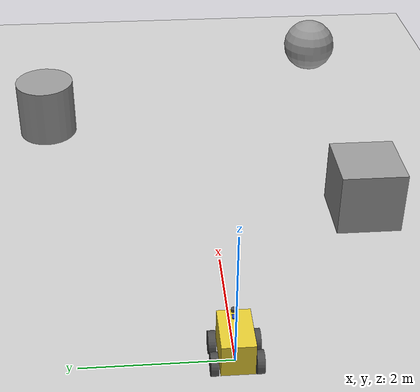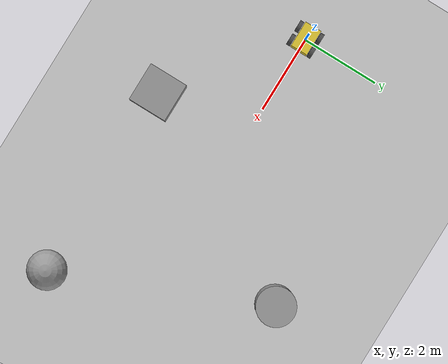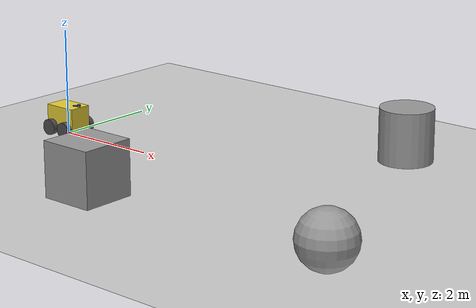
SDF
<sdf version="1.6">
 <world name="default">
  <light name="sun" type="directional">
   <pose>0 0 10 0 -0 0</pose>
   <diffuse>0.8 0.8 0.8 1</diffuse>
   <specular>0.2 0.2 0.2 1</specular>
   <attenuation>
    <range>1000</range>
    <constant>0.9</constant>
    <linear>0.01</linear>
    <quadratic>0.001</quadratic>
   </attenuation>
   <direction>-0.5 0.1 -0.9</direction>
  </light>
  <model name="ground_plane">
   <static>1</static>
   <link name="link">
    <collision name="collision">
     <geometry><plane><normal>0 0 1</normal><size>100 100</size></plane></geometry>
     <surface><friction><ode><mu>100</mu><mu2>50</mu2></ode></friction></surface>
    </collision>
    <visual name="visual">
     <cast_shadows>0</cast_shadows>
     <geometry><plane><normal>0 0 1</normal><size>100 100</size></plane></geometry>
     <material>
      <script><uri>file://media/materials/scripts/gazebo.material</uri><name>Gazebo/Grey</name></script>
     </material>
    </visual>
   </link>
  </model>
  <gravity>0 0 -9.8</gravity>
  <magnetic_field>6e-06 2.3e-05 -4.2e-05</magnetic_field>
  <atmosphere type="adiabatic"/>
  <physics name="default_physics" default="0" type="ode">
   <max_step_size>0.001</max_step_size>
   <real_time_factor>1</real_time_factor>
   <real_time_update_rate>1000</real_time_update_rate>
  </physics>
  <scene><ambient>0.4 0.4 0.4 1</ambient><background>0.7 0.7 0.7 1</background><shadows>1</shadows></scene>
  <spherical_coordinates>
   <surface_model>EARTH_WGS84</surface_model>
   <latitude_deg>0</latitude_deg>
   <longitude_deg>0</longitude_deg>
   <elevation>0</elevation>
   <heading_deg>0</heading_deg>
  </spherical_coordinates>
  <model name="unit_box">
   <pose>3.00249 -2.35073 0.499995 1e-05 -0 0</pose>
   <link name="link">
    <inertial>
     <mass>1</mass>
     <inertia>
      <ixx>0.166667</ixx>
      <ixy>0</ixy>
      <ixz>0</ixz>
      <iyy>0.166667</iyy>
      <iyz>0</iyz>
      <izz>0.166667</izz>
     </inertia>
    </inertial>
    <collision name="collision"><geometry><box><size>1 1 1</size></box></geometry></collision>
    <visual name="visual">
     <geometry><box><size>1 1 1</size></box></geometry>
     <material>
      <script><name>Gazebo/Grey</name><uri>file://media/materials/scripts/gazebo.material</uri></script>
     </material>
    </visual>
   </link>
  </model>
  <model name="unit_cylinder">
   <pose>5.88682 2.75848 0.499993 -3e-06 -3e-06 0</pose>
   <link name="link">
    <inertial>
     <mass>1</mass>
     <inertia><ixx>0.145833</ixx><ixy>0</ixy><ixz>0</ixz><iyy>0.145833</iyy><iyz>0</iyz><izz>0.125</izz></inertia>
    </inertial>
    <collision name="collision">
     <geometry><cylinder><radius>0.5</radius><length>1</length></cylinder></geometry>
    </collision>
    <visual name="visual">
     <geometry><cylinder><radius>0.5</radius><length>1</length></cylinder></geometry>
     <material>
      <script><name>Gazebo/Grey</name><uri>file://media/materials/scripts/gazebo.material</uri></script>
     </material>
    </visual>
   </link>
  </model>
  <model name="unit_sphere">
   <pose>8.05866 -2.39867 0.5 0 -0 0</pose>
   <link name="link">
    <inertial>
     <mass>1</mass>
     <inertia><ixx>0.1</ixx><ixy>0</ixy><ixz>0</ixz><iyy>0.1</iyy><iyz>0</iyz><izz>0.1</izz></inertia>
    </inertial>
    <collision name="collision"><geometry><sphere><radius>0.5</radius></sphere></geometry></collision>
    <visual name="visual">
     <geometry><sphere><radius>0.5</radius></sphere></geometry>
     <material>
      <script><name>Gazebo/Grey</name><uri>file://media/materials/scripts/gazebo.material</uri></script>
     </material>
    </visual>
   </link>
  </model>
  <model name="TargetBot">
   <link name="chasis">
    <inertial>
     <pose>5e-06 0 0.325005 0 -0 0</pose>
     <mass>1.00002</mass>
     <inertia>
      <ixx>0.05582</ixx>
      <ixy>0</ixy>
      <ixz>-1.28497e-06</ixz>
      <iyy>0.0535463</iyy>
      <iyz>0</iyz>
      <izz>0.034545</izz>
     </inertia>
    </inertial>
    <collision name="chasis_collision">
     <pose>0 0 0.325 0 -0 0</pose>
     <geometry><box><size>0.67 0.44 0.47</size></box></geometry>
    </collision>
    <collision name="chasis_fixed_joint_lump__imu_link_collision_1">
     <pose>0.2 0 0.57 0 -0 0</pose>
     <geometry><box><size>0.08 0.06 0.01</size></box></geometry>
    </collision>
    <collision name="chasis_fixed_joint_lump__rplidar_link_collision_2">
     <pose>0.3 0 0.59 0 -0 0</pose>
     <geometry><cylinder><length>0.04</length><radius>0.035</radius></cylinder></geometry>
    </collision>
    <visual name="chasis_visual">
     <pose>0 0 0.325 0 -0 0</pose>
     <geometry><box><size>0.67 0.44 0.47</size></box></geometry>
     <material>
      <script><name>Gazebo/ZincYellow</name><uri>file://media/materials/scripts/gazebo.material</uri></script>
     </material>
    </visual>
    <visual name="chasis_fixed_joint_lump__imu_link_visual_1">
     <pose>0.2 0 0.57 0 -0 0</pose>
     <geometry><box><size>0.08 0.06 0.01</size></box></geometry>
     <material>
      <script><name>Gazebo/Blue</name><uri>file://media/materials/scripts/gazebo.material</uri></script>
     </material>
    </visual>
    <visual name="chasis_fixed_joint_lump__rplidar_link_visual_2">
     <pose>0.3 0 0.59 0 -0 0</pose>
     <geometry><cylinder><length>0.04</length><radius>0.035</radius></cylinder></geometry>
     <material>
      <script><name>Gazebo/DarkGrey</name><uri>file://media/materials/scripts/gazebo.material</uri></script>
     </material>
    </visual>
    <sensor name="imu_sensor" type="imu">
     <always_on>1</always_on>
     <update_rate>100</update_rate>
     <visualize>1</visualize>
     <topic>__default_topic__</topic>
     <plugin name="imu_plugin" filename="libgazebo_ros_imu_sensor.so">
      <topicName>imu</topicName>
      <bodyName>imu_link</bodyName>
      <updateRateHZ>10.0</updateRateHZ>
      <gaussianNoise>0.0</gaussianNoise>
      <xyzOffset>0 0 0</xyzOffset>
      <rpyOffset>0 0 0</rpyOffset>
      <frameName>imu_link</frameName>
      <initialOrientationAsReference>false</initialOrientationAsReference>
      <robotNamespace>/</robotNamespace>
     </plugin>
     <pose>0.2 0 0.57 0 -0 0</pose>
    </sensor>
    <sensor name="head_hokuyo_sensor" type="ray">
     <visualize>1</visualize>
     <update_rate>40</update_rate>
     <ray>
      <scan>
       <horizontal>
        <samples>720</samples>
        <resolution>1</resolution>
        <min_angle>-3.14159</min_angle>
        <max_angle>3.14159</max_angle>
       </horizontal>
       <vertical><samples>1</samples><min_angle>0</min_angle><max_angle>0</max_angle></vertical>
      </scan>
      <range><min>0.1</min><max>30</max><resolution>0.01</resolution></range>
      <noise><type>gaussian</type><mean>0</mean><stddev>0.01</stddev></noise>
     </ray>
     <plugin name="gazebo_ros_head_hokuyo_controller" filename="libgazebo_ros_laser.so">
      <topicName>/laser/scan</topicName>
      <frameName>hokuyo_link</frameName>
      <robotNamespace>/</robotNamespace>
     </plugin>
     <pose>0.3 0 0.59 0 -0 0</pose>
    </sensor>
   </link>
   <link name="left_front_wheel">
    <pose>0.19 0.29 0.15 0 -0 0</pose>
    <inertial>
     <pose>0 0 0 1.5707 -0 0</pose>
     <mass>2</mass>
     <inertia>
      <ixx>0.0129167</ixx>
      <ixy>0</ixy>
      <ixz>0</ixz>
      <iyy>0.0129167</iyy>
      <iyz>0</iyz>
      <izz>0.00050625</izz>
     </inertia>
    </inertial>
    <collision name="left_front_wheel_collision">
     <pose>0 0 0 1.5707 -0 0</pose>
     <geometry><cylinder><length>0.1</length><radius>0.15</radius></cylinder></geometry>
    </collision>
    <visual name="left_front_wheel_visual">
     <pose>0 0 0 1.5707 -0 0</pose>
     <geometry><cylinder><length>0.1</length><radius>0.15</radius></cylinder></geometry>
     <material>
      <script><name>Gazebo/DarkGrey</name><uri>file://media/materials/scripts/gazebo.material</uri></script>
     </material>
    </visual>
   </link>
   <joint name="left_front_wheel_to_chasis" type="revolute">
    <child>left_front_wheel</child>
    <parent>chasis</parent>
    <axis>
     <xyz>0 1 0</xyz>
     <limit><lower>-1e+16</lower><upper>1e+16</upper></limit>
     <dynamics><spring_reference>0</spring_reference><spring_stiffness>0</spring_stiffness></dynamics>
     <use_parent_model_frame>1</use_parent_model_frame>
    </axis>
   </joint>
   <link name="left_rear_wheel">
    <pose>-0.19 0.29 0.15 0 -0 0</pose>
    <inertial>
     <pose>0 0 0 1.5707 -0 0</pose>
     <mass>2</mass>
     <inertia>
      <ixx>0.0129167</ixx>
      <ixy>0</ixy>
      <ixz>0</ixz>
      <iyy>0.0129167</iyy>
      <iyz>0</iyz>
      <izz>0.00050625</izz>
     </inertia>
    </inertial>
    <collision name="left_rear_wheel_collision">
     <pose>0 0 0 1.5707 -0 0</pose>
     <geometry><cylinder><length>0.1</length><radius>0.15</radius></cylinder></geometry>
    </collision>
    <visual name="left_rear_wheel_visual">
     <pose>0 0 0 1.5707 -0 0</pose>
     <geometry><cylinder><length>0.1</length><radius>0.15</radius></cylinder></geometry>
     <material>
      <script><name>Gazebo/DarkGrey</name><uri>file://media/materials/scripts/gazebo.material</uri></script>
     </material>
    </visual>
   </link>
   <joint name="left_rear_wheel_to_chasis" type="revolute">
    <child>left_rear_wheel</child>
    <parent>chasis</parent>
    <axis>
     <xyz>0 1 0</xyz>
     <limit><lower>-1e+16</lower><upper>1e+16</upper></limit>
     <dynamics><spring_reference>0</spring_reference><spring_stiffness>0</spring_stiffness></dynamics>
     <use_parent_model_frame>1</use_parent_model_frame>
    </axis>
   </joint>
   <link name="right_front_wheel">
    <pose>0.19 -0.29 0.15 0 -0 0</pose>
    <inertial>
     <pose>0 0 0 1.5707 -0 0</pose>
     <mass>2</mass>
     <inertia>
      <ixx>0.0129167</ixx>
      <ixy>0</ixy>
      <ixz>0</ixz>
      <iyy>0.0129167</iyy>
      <iyz>0</iyz>
      <izz>0.00050625</izz>
     </inertia>
    </inertial>
    <collision name="right_front_wheel_collision">
     <pose>0 0 0 1.5707 -0 0</pose>
     <geometry><cylinder><length>0.1</length><radius>0.15</radius></cylinder></geometry>
    </collision>
    <visual name="right_front_wheel_visual">
     <pose>0 0 0 1.5707 -0 0</pose>
     <geometry><cylinder><length>0.1</length><radius>0.15</radius></cylinder></geometry>
     <material>
      <script><name>Gazebo/DarkGrey</name><uri>file://media/materials/scripts/gazebo.material</uri></script>
     </material>
    </visual>
   </link>
   <joint name="right_front_wheel_to_chasis" type="revolute">
    <child>right_front_wheel</child>
    <parent>chasis</parent>
    <axis>
     <xyz>0 1 0</xyz>
     <limit><lower>-1e+16</lower><upper>1e+16</upper></limit>
     <dynamics><spring_reference>0</spring_reference><spring_stiffness>0</spring_stiffness></dynamics>
     <use_parent_model_frame>1</use_parent_model_frame>
    </axis>
   </joint>
   <link name="right_rear_wheel">
    <pose>-0.19 -0.29 0.15 0 -0 0</pose>
    <inertial>
     <pose>0 0 0 1.5707 -0 0</pose>
     <mass>2</mass>
     <inertia>
      <ixx>0.0129167</ixx>
      <ixy>0</ixy>
      <ixz>0</ixz>
      <iyy>0.0129167</iyy>
      <iyz>0</iyz>
      <izz>0.00050625</izz>
     </inertia>
    </inertial>
    <collision name="right_rear_wheel_collision">
     <pose>0 0 0 1.5707 -0 0</pose>
     <geometry><cylinder><length>0.1</length><radius>0.15</radius></cylinder></geometry>
    </collision>
    <visual name="right_rear_wheel_visual">
     <pose>0 0 0 1.5707 -0 0</pose>
     <geometry><cylinder><length>0.1</length><radius>0.15</radius></cylinder></geometry>
     <material>
      <script><name>Gazebo/DarkGrey</name><uri>file://media/materials/scripts/gazebo.material</uri></script>
     </material>
    </visual>
   </link>
   <joint name="right_rear_wheel_to_chasis" type="revolute">
    <child>right_rear_wheel</child>
    <parent>chasis</parent>
    <axis>
     <xyz>0 1 0</xyz>
     <limit><lower>-1e+16</lower><upper>1e+16</upper></limit>
     <dynamics><spring_reference>0</spring_reference><spring_stiffness>0</spring_stiffness></dynamics>
     <use_parent_model_frame>1</use_parent_model_frame>
    </axis>
   </joint>
   <static>0</static>
   <plugin name="skid_steer_drive_controller" filename="libgazebo_ros_skid_steer_drive.so">
    <updateRate>100.0</updateRate>
    <robotNamespace>/</robotNamespace>
    <leftFrontJoint>left_front_wheel_to_chasis</leftFrontJoint>
    <rightFrontJoint>right_front_wheel_to_chasis</rightFrontJoint>
    <leftRearJoint>left_rear_wheel_to_chasis</leftRearJoint>
    <rightRearJoint>right_rear_wheel_to_chasis</rightRearJoint>
    <wheelSeparation>0.58</wheelSeparation>
    <wheelDiameter>0.3</wheelDiameter>
    <robotBaseFrame>chasis</robotBaseFrame>
    <torque>20</torque>
    <topicName>cmd_vel</topicName>
    <broadcastTF>false</broadcastTF>
   </plugin>
   <pose>0.003757 0.000178 2e-06 7e-06 -1e-06 6e-06</pose>
  </model>
 </world>
</sdf>
